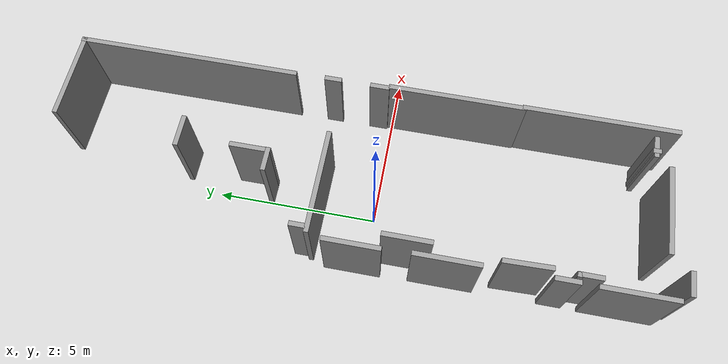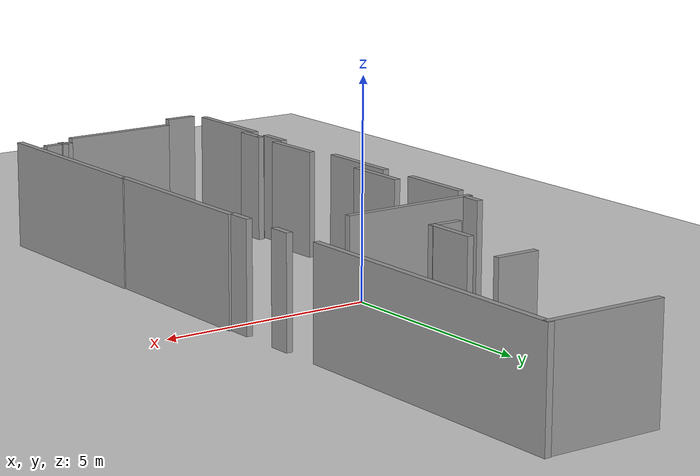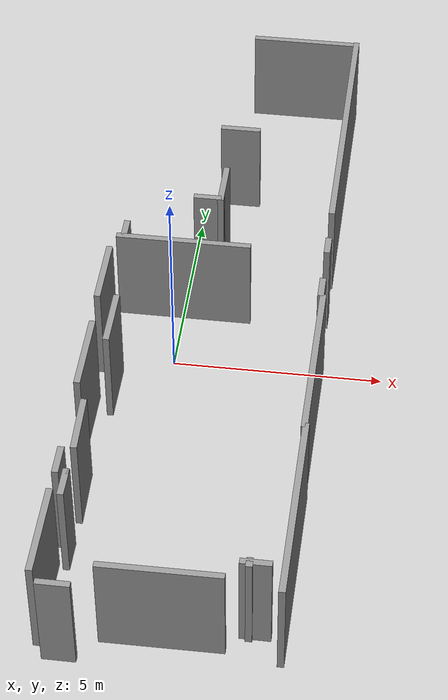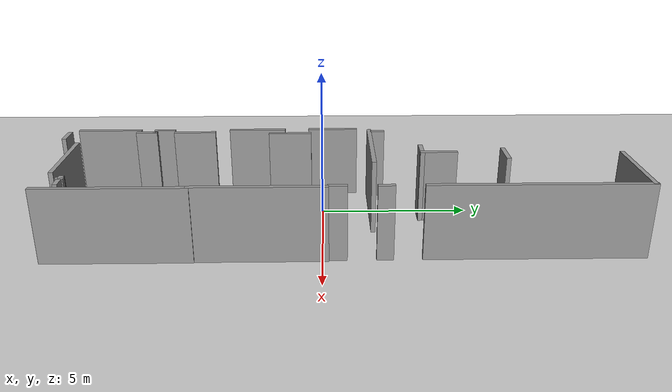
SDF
<sdf version="1.7">
 <world name="default">
  <model name="ground_plane">
   <static>1</static>
   <link name="link">
    <collision name="collision">
     <geometry><plane><normal>0 0 1</normal><size>100 100</size></plane></geometry>
     <surface>
      <contact><collide_bitmask>65535</collide_bitmask></contact>
      <friction><ode><mu>100</mu><mu2>50</mu2></ode></friction>
     </surface>
    </collision>
    <visual name="visual">
     <cast_shadows>0</cast_shadows>
     <geometry><plane><normal>0 0 1</normal><size>100 100</size></plane></geometry>
     <material>
      <script><uri>file://media/materials/scripts/gazebo.material</uri><name>Gazebo/Grey</name></script>
     </material>
    </visual>
   </link>
  </model>
  <model name="Bremen">
   <link name="Wall_12">
    <pose>2.00721 -8.46405 0 0 -0 3.14159</pose>
    <visual name="Wall_12_Visual">
     <pose>0 0 1.25 0 -0 0</pose>
     <geometry><box><size>0.690824 0.15 2.5</size></box></geometry>
     <material>
      <script><uri>file://media/materials/scripts/gazebo.material</uri><name>Gazebo/Grey</name></script>
      <ambient>1 1 1 1</ambient>
      <shader type="pixel"/>
     </material>
     <meta><layer>0</layer></meta>
    </visual>
    <collision name="Wall_12_Collision">
     <pose>0 0 1.25 0 -0 0</pose>
     <geometry><box><size>0.690824 0.15 2.5</size></box></geometry>
     <surface>
      <friction>
       <ode><mu>1</mu><mu2>1</mu2><fdir1>0 0 0</fdir1><slip1>0</slip1><slip2>0</slip2></ode>
       <torsional>
        <coefficient>1</coefficient>
        <patch_radius>0</patch_radius>
        <surface_radius>0</surface_radius>
        <use_patch_radius>1</use_patch_radius>
        <ode><slip>0</slip></ode>
       </torsional>
      </friction>
      <bounce><restitution_coefficient>0</restitution_coefficient><threshold>1e+06</threshold></bounce>
      <contact>
       <collide_without_contact>0</collide_without_contact>
       <collide_without_contact_bitmask>1</collide_without_contact_bitmask>
       <collide_bitmask>1</collide_bitmask>
       <ode>
        <soft_cfm>0</soft_cfm>
        <soft_erp>0.2</soft_erp>
        <kp>1e+13</kp>
        <kd>1</kd>
        <max_vel>0.01</max_vel>
        <min_depth>0</min_depth>
       </ode>
       <bullet>
        <split_impulse>1</split_impulse>
        <split_impulse_penetration_threshold>-0.01</split_impulse_penetration_threshold>
        <soft_cfm>0</soft_cfm>
        <soft_erp>0.2</soft_erp>
        <kp>1e+13</kp>
        <kd>1</kd>
       </bullet>
      </contact>
     </surface>
    </collision>
   </link>
   <link name="Wall_17">
    <pose>1.87355 -8.47751 0 0 0 -1.5708</pose>
    <visual name="Wall_17_Visual">
     <pose>0 0 1.25 0 -0 0</pose>
     <geometry><box><size>0.25 0.15 2.5</size></box></geometry>
     <material>
      <script><uri>file://media/materials/scripts/gazebo.material</uri><name>Gazebo/Grey</name></script>
      <ambient>1 1 1 1</ambient>
      <shader type="pixel"/>
     </material>
     <meta><layer>0</layer></meta>
    </visual>
    <collision name="Wall_17_Collision">
     <pose>0 0 1.25 0 -0 0</pose>
     <geometry><box><size>0.25 0.15 2.5</size></box></geometry>
     <surface>
      <friction>
       <ode><mu>1</mu><mu2>1</mu2><fdir1>0 0 0</fdir1><slip1>0</slip1><slip2>0</slip2></ode>
       <torsional>
        <coefficient>1</coefficient>
        <patch_radius>0</patch_radius>
        <surface_radius>0</surface_radius>
        <use_patch_radius>1</use_patch_radius>
        <ode><slip>0</slip></ode>
       </torsional>
      </friction>
      <bounce><restitution_coefficient>0</restitution_coefficient><threshold>1e+06</threshold></bounce>
      <contact>
       <collide_without_contact>0</collide_without_contact>
       <collide_without_contact_bitmask>1</collide_without_contact_bitmask>
       <collide_bitmask>1</collide_bitmask>
       <ode>
        <soft_cfm>0</soft_cfm>
        <soft_erp>0.2</soft_erp>
        <kp>1e+13</kp>
        <kd>1</kd>
        <max_vel>0.01</max_vel>
        <min_depth>0</min_depth>
       </ode>
       <bullet>
        <split_impulse>1</split_impulse>
        <split_impulse_penetration_threshold>-0.01</split_impulse_penetration_threshold>
        <soft_cfm>0</soft_cfm>
        <soft_erp>0.2</soft_erp>
        <kp>1e+13</kp>
        <kd>1</kd>
       </bullet>
      </contact>
     </surface>
    </collision>
   </link>
   <link name="Wall_19">
    <pose>0.062871 -8.91809 0 0 0 -3.13387</pose>
    <visual name="Wall_19_Visual">
     <pose>0 0 1.25 0 -0 0</pose>
     <geometry><box><size>2.72522 0.15 2.5</size></box></geometry>
     <material>
      <script><uri>file://media/materials/scripts/gazebo.material</uri><name>Gazebo/Grey</name></script>
      <ambient>1 1 1 1</ambient>
      <shader type="pixel"/>
     </material>
     <meta><layer>0</layer></meta>
    </visual>
    <collision name="Wall_19_Collision">
     <pose>0 0 1.25 0 -0 0</pose>
     <geometry><box><size>2.72522 0.15 2.5</size></box></geometry>
     <surface>
      <friction>
       <ode><mu>1</mu><mu2>1</mu2><fdir1>0 0 0</fdir1><slip1>0</slip1><slip2>0</slip2></ode>
       <torsional>
        <coefficient>1</coefficient>
        <patch_radius>0</patch_radius>
        <surface_radius>0</surface_radius>
        <use_patch_radius>1</use_patch_radius>
        <ode><slip>0</slip></ode>
       </torsional>
      </friction>
      <bounce><restitution_coefficient>0</restitution_coefficient><threshold>1e+06</threshold></bounce>
      <contact>
       <collide_without_contact>0</collide_without_contact>
       <collide_without_contact_bitmask>1</collide_without_contact_bitmask>
       <collide_bitmask>1</collide_bitmask>
       <ode>
        <soft_cfm>0</soft_cfm>
        <soft_erp>0.2</soft_erp>
        <kp>1e+13</kp>
        <kd>1</kd>
        <max_vel>0.01</max_vel>
        <min_depth>0</min_depth>
       </ode>
       <bullet>
        <split_impulse>1</split_impulse>
        <split_impulse_penetration_threshold>-0.01</split_impulse_penetration_threshold>
        <soft_cfm>0</soft_cfm>
        <soft_erp>0.2</soft_erp>
        <kp>1e+13</kp>
        <kd>1</kd>
       </bullet>
      </contact>
     </surface>
    </collision>
   </link>
   <link name="Wall_22">
    <pose>2.62503 -6.80715 0 0 -0 1.5708</pose>
    <visual name="Wall_22_Visual">
     <pose>0 0 1.25 0 -0 0</pose>
     <geometry><box><size>4.75 0.15 2.5</size></box></geometry>
     <material>
      <script><uri>file://media/materials/scripts/gazebo.material</uri><name>Gazebo/Grey</name></script>
      <ambient>1 1 1 1</ambient>
      <shader type="pixel"/>
     </material>
     <meta><layer>0</layer></meta>
    </visual>
    <collision name="Wall_22_Collision">
     <pose>0 0 1.25 0 -0 0</pose>
     <geometry><box><size>4.75 0.15 2.5</size></box></geometry>
     <surface>
      <friction>
       <ode><mu>1</mu><mu2>1</mu2><fdir1>0 0 0</fdir1><slip1>0</slip1><slip2>0</slip2></ode>
       <torsional>
        <coefficient>1</coefficient>
        <patch_radius>0</patch_radius>
        <surface_radius>0</surface_radius>
        <use_patch_radius>1</use_patch_radius>
        <ode><slip>0</slip></ode>
       </torsional>
      </friction>
      <bounce><restitution_coefficient>0</restitution_coefficient><threshold>1e+06</threshold></bounce>
      <contact>
       <collide_without_contact>0</collide_without_contact>
       <collide_without_contact_bitmask>1</collide_without_contact_bitmask>
       <collide_bitmask>1</collide_bitmask>
       <ode>
        <soft_cfm>0</soft_cfm>
        <soft_erp>0.2</soft_erp>
        <kp>1e+13</kp>
        <kd>1</kd>
        <max_vel>0.01</max_vel>
        <min_depth>0</min_depth>
       </ode>
       <bullet>
        <split_impulse>1</split_impulse>
        <split_impulse_penetration_threshold>-0.01</split_impulse_penetration_threshold>
        <soft_cfm>0</soft_cfm>
        <soft_erp>0.2</soft_erp>
        <kp>1e+13</kp>
        <kd>1</kd>
       </bullet>
      </contact>
     </surface>
    </collision>
   </link>
   <link name="Wall_24">
    <pose>2.59417 -2.42444 0 0 0 -1.5708</pose>
    <visual name="Wall_24_Visual">
     <pose>0 0 1.25 0 -0 0</pose>
     <geometry><box><size>4.25 0.15 2.5</size></box></geometry>
     <material>
      <script><uri>file://media/materials/scripts/gazebo.material</uri><name>Gazebo/Grey</name></script>
      <ambient>1 1 1 1</ambient>
      <shader type="pixel"/>
     </material>
     <meta><layer>0</layer></meta>
    </visual>
    <collision name="Wall_24_Collision">
     <pose>0 0 1.25 0 -0 0</pose>
     <geometry><box><size>4.25 0.15 2.5</size></box></geometry>
     <surface>
      <friction>
       <ode><mu>1</mu><mu2>1</mu2><fdir1>0 0 0</fdir1><slip1>0</slip1><slip2>0</slip2></ode>
       <torsional>
        <coefficient>1</coefficient>
        <patch_radius>0</patch_radius>
        <surface_radius>0</surface_radius>
        <use_patch_radius>1</use_patch_radius>
        <ode><slip>0</slip></ode>
       </torsional>
      </friction>
      <bounce><restitution_coefficient>0</restitution_coefficient><threshold>1e+06</threshold></bounce>
      <contact>
       <collide_without_contact>0</collide_without_contact>
       <collide_without_contact_bitmask>1</collide_without_contact_bitmask>
       <collide_bitmask>1</collide_bitmask>
       <ode>
        <soft_cfm>0</soft_cfm>
        <soft_erp>0.2</soft_erp>
        <kp>1e+13</kp>
        <kd>1</kd>
        <max_vel>0.01</max_vel>
        <min_depth>0</min_depth>
       </ode>
       <bullet>
        <split_impulse>1</split_impulse>
        <split_impulse_penetration_threshold>-0.01</split_impulse_penetration_threshold>
        <soft_cfm>0</soft_cfm>
        <soft_erp>0.2</soft_erp>
        <kp>1e+13</kp>
        <kd>1</kd>
       </bullet>
      </contact>
     </surface>
    </collision>
   </link>
   <link name="Wall_28">
    <pose>2.53799 -0.034106 0 0 -0 1.5708</pose>
    <visual name="Wall_28_Visual">
     <pose>0 0 1.25 0 -0 0</pose>
     <geometry><box><size>0.605036 0.15 2.5</size></box></geometry>
     <material>
      <script><uri>file://media/materials/scripts/gazebo.material</uri><name>Gazebo/Grey</name></script>
      <ambient>1 1 1 1</ambient>
      <shader type="pixel"/>
     </material>
     <meta><layer>0</layer></meta>
    </visual>
    <collision name="Wall_28_Collision">
     <pose>0 0 1.25 0 -0 0</pose>
     <geometry><box><size>0.605036 0.15 2.5</size></box></geometry>
     <surface>
      <friction>
       <ode><mu>1</mu><mu2>1</mu2><fdir1>0 0 0</fdir1><slip1>0</slip1><slip2>0</slip2></ode>
       <torsional>
        <coefficient>1</coefficient>
        <patch_radius>0</patch_radius>
        <surface_radius>0</surface_radius>
        <use_patch_radius>1</use_patch_radius>
        <ode><slip>0</slip></ode>
       </torsional>
      </friction>
      <bounce><restitution_coefficient>0</restitution_coefficient><threshold>1e+06</threshold></bounce>
      <contact>
       <collide_without_contact>0</collide_without_contact>
       <collide_without_contact_bitmask>1</collide_without_contact_bitmask>
       <collide_bitmask>1</collide_bitmask>
       <ode>
        <soft_cfm>0</soft_cfm>
        <soft_erp>0.2</soft_erp>
        <kp>1e+13</kp>
        <kd>1</kd>
        <max_vel>0.01</max_vel>
        <min_depth>0</min_depth>
       </ode>
       <bullet>
        <split_impulse>1</split_impulse>
        <split_impulse_penetration_threshold>-0.01</split_impulse_penetration_threshold>
        <soft_cfm>0</soft_cfm>
        <soft_erp>0.2</soft_erp>
        <kp>1e+13</kp>
        <kd>1</kd>
       </bullet>
      </contact>
     </surface>
    </collision>
   </link>
   <link name="Wall_31">
    <pose>2.53803 1.43445 0 0 -0 1.5708</pose>
    <visual name="Wall_31_Visual">
     <pose>0 0 1.25 0 -0 0</pose>
     <geometry><box><size>0.531772 0.15 2.5</size></box></geometry>
     <material>
      <script><uri>file://media/materials/scripts/gazebo.material</uri><name>Gazebo/Grey</name></script>
      <ambient>1 1 1 1</ambient>
      <shader type="pixel"/>
     </material>
     <meta><layer>0</layer></meta>
    </visual>
    <collision name="Wall_31_Collision">
     <pose>0 0 1.25 0 -0 0</pose>
     <geometry><box><size>0.531772 0.15 2.5</size></box></geometry>
     <surface>
      <friction>
       <ode><mu>1</mu><mu2>1</mu2><fdir1>0 0 0</fdir1><slip1>0</slip1><slip2>0</slip2></ode>
       <torsional>
        <coefficient>1</coefficient>
        <patch_radius>0</patch_radius>
        <surface_radius>0</surface_radius>
        <use_patch_radius>1</use_patch_radius>
        <ode><slip>0</slip></ode>
       </torsional>
      </friction>
      <bounce><restitution_coefficient>0</restitution_coefficient><threshold>1e+06</threshold></bounce>
      <contact>
       <collide_without_contact>0</collide_without_contact>
       <collide_without_contact_bitmask>1</collide_without_contact_bitmask>
       <collide_bitmask>1</collide_bitmask>
       <ode>
        <soft_cfm>0</soft_cfm>
        <soft_erp>0.2</soft_erp>
        <kp>1e+13</kp>
        <kd>1</kd>
        <max_vel>0.01</max_vel>
        <min_depth>0</min_depth>
       </ode>
       <bullet>
        <split_impulse>1</split_impulse>
        <split_impulse_penetration_threshold>-0.01</split_impulse_penetration_threshold>
        <soft_cfm>0</soft_cfm>
        <soft_erp>0.2</soft_erp>
        <kp>1e+13</kp>
        <kd>1</kd>
       </bullet>
      </contact>
     </surface>
    </collision>
   </link>
   <link name="Wall_34">
    <pose>2.52369 6.09553 0 0 -0 1.5708</pose>
    <visual name="Wall_34_Visual">
     <pose>0 0 1.25 0 -0 0</pose>
     <geometry><box><size>7 0.15 2.5</size></box></geometry>
     <material>
      <script><uri>file://media/materials/scripts/gazebo.material</uri><name>Gazebo/Grey</name></script>
      <ambient>1 1 1 1</ambient>
      <shader type="pixel"/>
     </material>
     <meta><layer>0</layer></meta>
    </visual>
    <collision name="Wall_34_Collision">
     <pose>0 0 1.25 0 -0 0</pose>
     <geometry><box><size>7 0.15 2.5</size></box></geometry>
     <surface>
      <friction>
       <ode><mu>1</mu><mu2>1</mu2><fdir1>0 0 0</fdir1><slip1>0</slip1><slip2>0</slip2></ode>
       <torsional>
        <coefficient>1</coefficient>
        <patch_radius>0</patch_radius>
        <surface_radius>0</surface_radius>
        <use_patch_radius>1</use_patch_radius>
        <ode><slip>0</slip></ode>
       </torsional>
      </friction>
      <bounce><restitution_coefficient>0</restitution_coefficient><threshold>1e+06</threshold></bounce>
      <contact>
       <collide_without_contact>0</collide_without_contact>
       <collide_without_contact_bitmask>1</collide_without_contact_bitmask>
       <collide_bitmask>1</collide_bitmask>
       <ode>
        <soft_cfm>0</soft_cfm>
        <soft_erp>0.2</soft_erp>
        <kp>1e+13</kp>
        <kd>1</kd>
        <max_vel>0.01</max_vel>
        <min_depth>0</min_depth>
       </ode>
       <bullet>
        <split_impulse>1</split_impulse>
        <split_impulse_penetration_threshold>-0.01</split_impulse_penetration_threshold>
        <soft_cfm>0</soft_cfm>
        <soft_erp>0.2</soft_erp>
        <kp>1e+13</kp>
        <kd>1</kd>
       </bullet>
      </contact>
     </surface>
    </collision>
   </link>
   <link name="Wall_37">
    <pose>1.19275 9.49861 0 0 -0 0</pose>
    <visual name="Wall_37_Visual">
     <pose>0 0 1.25 0 -0 0</pose>
     <geometry><box><size>2.75 0.15 2.5</size></box></geometry>
     <material>
      <script><uri>file://media/materials/scripts/gazebo.material</uri><name>Gazebo/Grey</name></script>
      <ambient>1 1 1 1</ambient>
      <shader type="pixel"/>
     </material>
     <meta><layer>0</layer></meta>
    </visual>
    <collision name="Wall_37_Collision">
     <pose>0 0 1.25 0 -0 0</pose>
     <geometry><box><size>2.75 0.15 2.5</size></box></geometry>
     <surface>
      <friction>
       <ode><mu>1</mu><mu2>1</mu2><fdir1>0 0 0</fdir1><slip1>0</slip1><slip2>0</slip2></ode>
       <torsional>
        <coefficient>1</coefficient>
        <patch_radius>0</patch_radius>
        <surface_radius>0</surface_radius>
        <use_patch_radius>1</use_patch_radius>
        <ode><slip>0</slip></ode>
       </torsional>
      </friction>
      <bounce><restitution_coefficient>0</restitution_coefficient><threshold>1e+06</threshold></bounce>
      <contact>
       <collide_without_contact>0</collide_without_contact>
       <collide_without_contact_bitmask>1</collide_without_contact_bitmask>
       <collide_bitmask>1</collide_bitmask>
       <ode>
        <soft_cfm>0</soft_cfm>
        <soft_erp>0.2</soft_erp>
        <kp>1e+13</kp>
        <kd>1</kd>
        <max_vel>0.01</max_vel>
        <min_depth>0</min_depth>
       </ode>
       <bullet>
        <split_impulse>1</split_impulse>
        <split_impulse_penetration_threshold>-0.01</split_impulse_penetration_threshold>
        <soft_cfm>0</soft_cfm>
        <soft_erp>0.2</soft_erp>
        <kp>1e+13</kp>
        <kd>1</kd>
       </bullet>
      </contact>
     </surface>
    </collision>
   </link>
   <link name="Wall_40">
    <pose>-0.912236 1.17525 0 0 -0 3.14159</pose>
    <visual name="Wall_40_Visual">
     <pose>0 0 1.25 0 -0 0</pose>
     <geometry><box><size>3.25 0.15 2.5</size></box></geometry>
     <material>
      <script><uri>file://media/materials/scripts/gazebo.material</uri><name>Gazebo/Grey</name></script>
      <ambient>1 1 1 1</ambient>
      <shader type="pixel"/>
     </material>
     <meta><layer>0</layer></meta>
    </visual>
    <collision name="Wall_40_Collision">
     <pose>0 0 1.25 0 -0 0</pose>
     <geometry><box><size>3.25 0.15 2.5</size></box></geometry>
     <surface>
      <friction>
       <ode><mu>1</mu><mu2>1</mu2><fdir1>0 0 0</fdir1><slip1>0</slip1><slip2>0</slip2></ode>
       <torsional>
        <coefficient>1</coefficient>
        <patch_radius>0</patch_radius>
        <surface_radius>0</surface_radius>
        <use_patch_radius>1</use_patch_radius>
        <ode><slip>0</slip></ode>
       </torsional>
      </friction>
      <bounce><restitution_coefficient>0</restitution_coefficient><threshold>1e+06</threshold></bounce>
      <contact>
       <collide_without_contact>0</collide_without_contact>
       <collide_without_contact_bitmask>1</collide_without_contact_bitmask>
       <collide_bitmask>1</collide_bitmask>
       <ode>
        <soft_cfm>0</soft_cfm>
        <soft_erp>0.2</soft_erp>
        <kp>1e+13</kp>
        <kd>1</kd>
        <max_vel>0.01</max_vel>
        <min_depth>0</min_depth>
       </ode>
       <bullet>
        <split_impulse>1</split_impulse>
        <split_impulse_penetration_threshold>-0.01</split_impulse_penetration_threshold>
        <soft_cfm>0</soft_cfm>
        <soft_erp>0.2</soft_erp>
        <kp>1e+13</kp>
        <kd>1</kd>
       </bullet>
      </contact>
     </surface>
    </collision>
   </link>
   <link name="Wall_42">
    <pose>-2.35817 1.46547 0 0 -0 1.5708</pose>
    <visual name="Wall_42_Visual">
     <pose>0 0 1.25 0 -0 0</pose>
     <geometry><box><size>0.5 0.15 2.5</size></box></geometry>
     <material>
      <script><uri>file://media/materials/scripts/gazebo.material</uri><name>Gazebo/Grey</name></script>
      <ambient>1 1 1 1</ambient>
      <shader type="pixel"/>
     </material>
     <meta><layer>0</layer></meta>
    </visual>
    <collision name="Wall_42_Collision">
     <pose>0 0 1.25 0 -0 0</pose>
     <geometry><box><size>0.5 0.15 2.5</size></box></geometry>
     <surface>
      <friction>
       <ode><mu>1</mu><mu2>1</mu2><fdir1>0 0 0</fdir1><slip1>0</slip1><slip2>0</slip2></ode>
       <torsional>
        <coefficient>1</coefficient>
        <patch_radius>0</patch_radius>
        <surface_radius>0</surface_radius>
        <use_patch_radius>1</use_patch_radius>
        <ode><slip>0</slip></ode>
       </torsional>
      </friction>
      <bounce><restitution_coefficient>0</restitution_coefficient><threshold>1e+06</threshold></bounce>
      <contact>
       <collide_without_contact>0</collide_without_contact>
       <collide_without_contact_bitmask>1</collide_without_contact_bitmask>
       <collide_bitmask>1</collide_bitmask>
       <ode>
        <soft_cfm>0</soft_cfm>
        <soft_erp>0.2</soft_erp>
        <kp>1e+13</kp>
        <kd>1</kd>
        <max_vel>0.01</max_vel>
        <min_depth>0</min_depth>
       </ode>
       <bullet>
        <split_impulse>1</split_impulse>
        <split_impulse_penetration_threshold>-0.01</split_impulse_penetration_threshold>
        <soft_cfm>0</soft_cfm>
        <soft_erp>0.2</soft_erp>
        <kp>1e+13</kp>
        <kd>1</kd>
       </bullet>
      </contact>
     </surface>
    </collision>
   </link>
   <link name="Wall_44">
    <pose>-2.62503 -0.134545 0 0 0 -1.5708</pose>
    <visual name="Wall_44_Visual">
     <pose>0 0 1.25 0 -0 0</pose>
     <geometry><box><size>1.75 0.15 2.5</size></box></geometry>
     <material>
      <script><uri>file://media/materials/scripts/gazebo.material</uri><name>Gazebo/Grey</name></script>
      <ambient>1 1 1 1</ambient>
      <shader type="pixel"/>
     </material>
     <meta><layer>0</layer></meta>
    </visual>
    <collision name="Wall_44_Collision">
     <pose>0 0 1.25 0 -0 0</pose>
     <geometry><box><size>1.75 0.15 2.5</size></box></geometry>
     <surface>
      <friction>
       <ode><mu>1</mu><mu2>1</mu2><fdir1>0 0 0</fdir1><slip1>0</slip1><slip2>0</slip2></ode>
       <torsional>
        <coefficient>1</coefficient>
        <patch_radius>0</patch_radius>
        <surface_radius>0</surface_radius>
        <use_patch_radius>1</use_patch_radius>
        <ode><slip>0</slip></ode>
       </torsional>
      </friction>
      <bounce><restitution_coefficient>0</restitution_coefficient><threshold>1e+06</threshold></bounce>
      <contact>
       <collide_without_contact>0</collide_without_contact>
       <collide_without_contact_bitmask>1</collide_without_contact_bitmask>
       <collide_bitmask>1</collide_bitmask>
       <ode>
        <soft_cfm>0</soft_cfm>
        <soft_erp>0.2</soft_erp>
        <kp>1e+13</kp>
        <kd>1</kd>
        <max_vel>0.01</max_vel>
        <min_depth>0</min_depth>
       </ode>
       <bullet>
        <split_impulse>1</split_impulse>
        <split_impulse_penetration_threshold>-0.01</split_impulse_penetration_threshold>
        <soft_cfm>0</soft_cfm>
        <soft_erp>0.2</soft_erp>
        <kp>1e+13</kp>
        <kd>1</kd>
       </bullet>
      </contact>
     </surface>
    </collision>
   </link>
   <link name="Wall_47">
    <pose>-2.17683 -1.65592 0 0 0 -1.5708</pose>
    <visual name="Wall_47_Visual">
     <pose>0 0 1.25 0 -0 0</pose>
     <geometry><box><size>1.5 0.15 2.5</size></box></geometry>
     <material>
      <script><uri>file://media/materials/scripts/gazebo.material</uri><name>Gazebo/Grey</name></script>
      <ambient>1 1 1 1</ambient>
      <shader type="pixel"/>
     </material>
     <meta><layer>0</layer></meta>
    </visual>
    <collision name="Wall_47_Collision">
     <pose>0 0 1.25 0 -0 0</pose>
     <geometry><box><size>1.5 0.15 2.5</size></box></geometry>
     <surface>
      <friction>
       <ode><mu>1</mu><mu2>1</mu2><fdir1>0 0 0</fdir1><slip1>0</slip1><slip2>0</slip2></ode>
       <torsional>
        <coefficient>1</coefficient>
        <patch_radius>0</patch_radius>
        <surface_radius>0</surface_radius>
        <use_patch_radius>1</use_patch_radius>
        <ode><slip>0</slip></ode>
       </torsional>
      </friction>
      <bounce><restitution_coefficient>0</restitution_coefficient><threshold>1e+06</threshold></bounce>
      <contact>
       <collide_without_contact>0</collide_without_contact>
       <collide_without_contact_bitmask>1</collide_without_contact_bitmask>
       <collide_bitmask>1</collide_bitmask>
       <ode>
        <soft_cfm>0</soft_cfm>
        <soft_erp>0.2</soft_erp>
        <kp>1e+13</kp>
        <kd>1</kd>
        <max_vel>0.01</max_vel>
        <min_depth>0</min_depth>
       </ode>
       <bullet>
        <split_impulse>1</split_impulse>
        <split_impulse_penetration_threshold>-0.01</split_impulse_penetration_threshold>
        <soft_cfm>0</soft_cfm>
        <soft_erp>0.2</soft_erp>
        <kp>1e+13</kp>
        <kd>1</kd>
       </bullet>
      </contact>
     </surface>
    </collision>
   </link>
   <link name="Wall_52">
    <pose>-2.58227 -2.84419 0 0 -0 1.5708</pose>
    <visual name="Wall_52_Visual">
     <pose>0 0 1.25 0 -0 0</pose>
     <geometry><box><size>2 0.15 2.5</size></box></geometry>
     <material>
      <script><uri>file://media/materials/scripts/gazebo.material</uri><name>Gazebo/Grey</name></script>
      <ambient>1 1 1 1</ambient>
      <shader type="pixel"/>
     </material>
     <meta><layer>0</layer></meta>
    </visual>
    <collision name="Wall_52_Collision">
     <pose>0 0 1.25 0 -0 0</pose>
     <geometry><box><size>2 0.15 2.5</size></box></geometry>
     <surface>
      <friction>
       <ode><mu>1</mu><mu2>1</mu2><fdir1>0 0 0</fdir1><slip1>0</slip1><slip2>0</slip2></ode>
       <torsional>
        <coefficient>1</coefficient>
        <patch_radius>0</patch_radius>
        <surface_radius>0</surface_radius>
        <use_patch_radius>1</use_patch_radius>
        <ode><slip>0</slip></ode>
       </torsional>
      </friction>
      <bounce><restitution_coefficient>0</restitution_coefficient><threshold>1e+06</threshold></bounce>
      <contact>
       <collide_without_contact>0</collide_without_contact>
       <collide_without_contact_bitmask>1</collide_without_contact_bitmask>
       <collide_bitmask>1</collide_bitmask>
       <ode>
        <soft_cfm>0</soft_cfm>
        <soft_erp>0.2</soft_erp>
        <kp>1e+13</kp>
        <kd>1</kd>
        <max_vel>0.01</max_vel>
        <min_depth>0</min_depth>
       </ode>
       <bullet>
        <split_impulse>1</split_impulse>
        <split_impulse_penetration_threshold>-0.01</split_impulse_penetration_threshold>
        <soft_cfm>0</soft_cfm>
        <soft_erp>0.2</soft_erp>
        <kp>1e+13</kp>
        <kd>1</kd>
       </bullet>
      </contact>
     </surface>
    </collision>
   </link>
   <link name="Wall_54">
    <pose>-2.31455 -5.06059 0 0 0 -1.54512</pose>
    <visual name="Wall_54_Visual">
     <pose>0 0 1.25 0 -0 0</pose>
     <geometry><box><size>1.47091 0.15 2.5</size></box></geometry>
     <material>
      <script><uri>file://media/materials/scripts/gazebo.material</uri><name>Gazebo/Grey</name></script>
      <ambient>1 1 1 1</ambient>
      <shader type="pixel"/>
     </material>
     <meta><layer>0</layer></meta>
    </visual>
    <collision name="Wall_54_Collision">
     <pose>0 0 1.25 0 -0 0</pose>
     <geometry><box><size>1.47091 0.15 2.5</size></box></geometry>
     <surface>
      <friction>
       <ode><mu>1</mu><mu2>1</mu2><fdir1>0 0 0</fdir1><slip1>0</slip1><slip2>0</slip2></ode>
       <torsional>
        <coefficient>1</coefficient>
        <patch_radius>0</patch_radius>
        <surface_radius>0</surface_radius>
        <use_patch_radius>1</use_patch_radius>
        <ode><slip>0</slip></ode>
       </torsional>
      </friction>
      <bounce><restitution_coefficient>0</restitution_coefficient><threshold>1e+06</threshold></bounce>
      <contact>
       <collide_without_contact>0</collide_without_contact>
       <collide_without_contact_bitmask>1</collide_without_contact_bitmask>
       <collide_bitmask>1</collide_bitmask>
       <ode>
        <soft_cfm>0</soft_cfm>
        <soft_erp>0.2</soft_erp>
        <kp>1e+13</kp>
        <kd>1</kd>
        <max_vel>0.01</max_vel>
        <min_depth>0</min_depth>
       </ode>
       <bullet>
        <split_impulse>1</split_impulse>
        <split_impulse_penetration_threshold>-0.01</split_impulse_penetration_threshold>
        <soft_cfm>0</soft_cfm>
        <soft_erp>0.2</soft_erp>
        <kp>1e+13</kp>
        <kd>1</kd>
       </bullet>
      </contact>
     </surface>
    </collision>
   </link>
   <link name="Wall_57">
    <pose>-2.56406 -6.17227 0 0 -0 1.5708</pose>
    <visual name="Wall_57_Visual">
     <pose>0 0 1.25 0 -0 0</pose>
     <geometry><box><size>0.75 0.15 2.5</size></box></geometry>
     <material>
      <script><uri>file://media/materials/scripts/gazebo.material</uri><name>Gazebo/Grey</name></script>
      <ambient>1 1 1 1</ambient>
      <shader type="pixel"/>
     </material>
     <meta><layer>0</layer></meta>
    </visual>
    <collision name="Wall_57_Collision">
     <pose>0 0 1.25 0 -0 0</pose>
     <geometry><box><size>0.75 0.15 2.5</size></box></geometry>
     <surface>
      <friction>
       <ode><mu>1</mu><mu2>1</mu2><fdir1>0 0 0</fdir1><slip1>0</slip1><slip2>0</slip2></ode>
       <torsional>
        <coefficient>1</coefficient>
        <patch_radius>0</patch_radius>
        <surface_radius>0</surface_radius>
        <use_patch_radius>1</use_patch_radius>
        <ode><slip>0</slip></ode>
       </torsional>
      </friction>
      <bounce><restitution_coefficient>0</restitution_coefficient><threshold>1e+06</threshold></bounce>
      <contact>
       <collide_without_contact>0</collide_without_contact>
       <collide_without_contact_bitmask>1</collide_without_contact_bitmask>
       <collide_bitmask>1</collide_bitmask>
       <ode>
        <soft_cfm>0</soft_cfm>
        <soft_erp>0.2</soft_erp>
        <kp>1e+13</kp>
        <kd>1</kd>
        <max_vel>0.01</max_vel>
        <min_depth>0</min_depth>
       </ode>
       <bullet>
        <split_impulse>1</split_impulse>
        <split_impulse_penetration_threshold>-0.01</split_impulse_penetration_threshold>
        <soft_cfm>0</soft_cfm>
        <soft_erp>0.2</soft_erp>
        <kp>1e+13</kp>
        <kd>1</kd>
       </bullet>
      </contact>
     </surface>
    </collision>
   </link>
   <link name="Wall_60">
    <pose>-2.34359 -6.48281 0 0 -0 0</pose>
    <visual name="Wall_60_Visual">
     <pose>0 0 1.25 0 -0 0</pose>
     <geometry><box><size>0.15 0.15 2.5</size></box></geometry>
     <material>
      <script><uri>file://media/materials/scripts/gazebo.material</uri><name>Gazebo/Grey</name></script>
      <ambient>1 1 1 1</ambient>
      <shader type="pixel"/>
     </material>
     <meta><layer>0</layer></meta>
    </visual>
    <collision name="Wall_60_Collision">
     <pose>0 0 1.25 0 -0 0</pose>
     <geometry><box><size>0.15 0.15 2.5</size></box></geometry>
     <surface>
      <friction>
       <ode><mu>1</mu><mu2>1</mu2><fdir1>0 0 0</fdir1><slip1>0</slip1><slip2>0</slip2></ode>
       <torsional>
        <coefficient>1</coefficient>
        <patch_radius>0</patch_radius>
        <surface_radius>0</surface_radius>
        <use_patch_radius>1</use_patch_radius>
        <ode><slip>0</slip></ode>
       </torsional>
      </friction>
      <bounce><restitution_coefficient>0</restitution_coefficient><threshold>1e+06</threshold></bounce>
      <contact>
       <collide_without_contact>0</collide_without_contact>
       <collide_without_contact_bitmask>1</collide_without_contact_bitmask>
       <collide_bitmask>1</collide_bitmask>
       <ode>
        <soft_cfm>0</soft_cfm>
        <soft_erp>0.2</soft_erp>
        <kp>1e+13</kp>
        <kd>1</kd>
        <max_vel>0.01</max_vel>
        <min_depth>0</min_depth>
       </ode>
       <bullet>
        <split_impulse>1</split_impulse>
        <split_impulse_penetration_threshold>-0.01</split_impulse_penetration_threshold>
        <soft_cfm>0</soft_cfm>
        <soft_erp>0.2</soft_erp>
        <kp>1e+13</kp>
        <kd>1</kd>
       </bullet>
      </contact>
     </surface>
    </collision>
   </link>
   <link name="Wall_62">
    <pose>-2.33294 -6.77988 0 0 -0 1.56772</pose>
    <visual name="Wall_62_Visual">
     <pose>0 0 1.25 0 -0 0</pose>
     <geometry><box><size>0.751334 0.15 2.5</size></box></geometry>
     <material>
      <script><uri>file://media/materials/scripts/gazebo.material</uri><name>Gazebo/Grey</name></script>
      <ambient>1 1 1 1</ambient>
      <shader type="pixel"/>
     </material>
     <meta><layer>0</layer></meta>
    </visual>
    <collision name="Wall_62_Collision">
     <pose>0 0 1.25 0 -0 0</pose>
     <geometry><box><size>0.751334 0.15 2.5</size></box></geometry>
     <surface>
      <friction>
       <ode><mu>1</mu><mu2>1</mu2><fdir1>0 0 0</fdir1><slip1>0</slip1><slip2>0</slip2></ode>
       <torsional>
        <coefficient>1</coefficient>
        <patch_radius>0</patch_radius>
        <surface_radius>0</surface_radius>
        <use_patch_radius>1</use_patch_radius>
        <ode><slip>0</slip></ode>
       </torsional>
      </friction>
      <bounce><restitution_coefficient>0</restitution_coefficient><threshold>1e+06</threshold></bounce>
      <contact>
       <collide_without_contact>0</collide_without_contact>
       <collide_without_contact_bitmask>1</collide_without_contact_bitmask>
       <collide_bitmask>1</collide_bitmask>
       <ode>
        <soft_cfm>0</soft_cfm>
        <soft_erp>0.2</soft_erp>
        <kp>1e+13</kp>
        <kd>1</kd>
        <max_vel>0.01</max_vel>
        <min_depth>0</min_depth>
       </ode>
       <bullet>
        <split_impulse>1</split_impulse>
        <split_impulse_penetration_threshold>-0.01</split_impulse_penetration_threshold>
        <soft_cfm>0</soft_cfm>
        <soft_erp>0.2</soft_erp>
        <kp>1e+13</kp>
        <kd>1</kd>
       </bullet>
      </contact>
     </surface>
    </collision>
   </link>
   <link name="Wall_65">
    <pose>-2.58366 -8.13911 0 0 0 -1.5708</pose>
    <visual name="Wall_65_Visual">
     <pose>0 0 1.25 0 -0 0</pose>
     <geometry><box><size>2.25 0.15 2.5</size></box></geometry>
     <material>
      <script><uri>file://media/materials/scripts/gazebo.material</uri><name>Gazebo/Grey</name></script>
      <ambient>1 1 1 1</ambient>
      <shader type="pixel"/>
     </material>
     <meta><layer>0</layer></meta>
    </visual>
    <collision name="Wall_65_Collision">
     <pose>0 0 1.25 0 -0 0</pose>
     <geometry><box><size>2.25 0.15 2.5</size></box></geometry>
     <surface>
      <friction>
       <ode><mu>1</mu><mu2>1</mu2><fdir1>0 0 0</fdir1><slip1>0</slip1><slip2>0</slip2></ode>
       <torsional>
        <coefficient>1</coefficient>
        <patch_radius>0</patch_radius>
        <surface_radius>0</surface_radius>
        <use_patch_radius>1</use_patch_radius>
        <ode><slip>0</slip></ode>
       </torsional>
      </friction>
      <bounce><restitution_coefficient>0</restitution_coefficient><threshold>1e+06</threshold></bounce>
      <contact>
       <collide_without_contact>0</collide_without_contact>
       <collide_without_contact_bitmask>1</collide_without_contact_bitmask>
       <collide_bitmask>1</collide_bitmask>
       <ode>
        <soft_cfm>0</soft_cfm>
        <soft_erp>0.2</soft_erp>
        <kp>1e+13</kp>
        <kd>1</kd>
        <max_vel>0.01</max_vel>
        <min_depth>0</min_depth>
       </ode>
       <bullet>
        <split_impulse>1</split_impulse>
        <split_impulse_penetration_threshold>-0.01</split_impulse_penetration_threshold>
        <soft_cfm>0</soft_cfm>
        <soft_erp>0.2</soft_erp>
        <kp>1e+13</kp>
        <kd>1</kd>
       </bullet>
      </contact>
     </surface>
    </collision>
   </link>
   <link name="Wall_67">
    <pose>-2.04311 -9.52053 0 0 -0 0</pose>
    <visual name="Wall_67_Visual">
     <pose>0 0 1.25 0 -0 0</pose>
     <geometry><box><size>0.75 0.15 2.5</size></box></geometry>
     <material>
      <script><uri>file://media/materials/scripts/gazebo.material</uri><name>Gazebo/Grey</name></script>
      <ambient>1 1 1 1</ambient>
      <shader type="pixel"/>
     </material>
     <meta><layer>0</layer></meta>
    </visual>
    <collision name="Wall_67_Collision">
     <pose>0 0 1.25 0 -0 0</pose>
     <geometry><box><size>0.75 0.15 2.5</size></box></geometry>
     <surface>
      <friction>
       <ode><mu>1</mu><mu2>1</mu2><fdir1>0 0 0</fdir1><slip1>0</slip1><slip2>0</slip2></ode>
       <torsional>
        <coefficient>1</coefficient>
        <patch_radius>0</patch_radius>
        <surface_radius>0</surface_radius>
        <use_patch_radius>1</use_patch_radius>
        <ode><slip>0</slip></ode>
       </torsional>
      </friction>
      <bounce><restitution_coefficient>0</restitution_coefficient><threshold>1e+06</threshold></bounce>
      <contact>
       <collide_without_contact>0</collide_without_contact>
       <collide_without_contact_bitmask>1</collide_without_contact_bitmask>
       <collide_bitmask>1</collide_bitmask>
       <ode>
        <soft_cfm>0</soft_cfm>
        <soft_erp>0.2</soft_erp>
        <kp>1e+13</kp>
        <kd>1</kd>
        <max_vel>0.01</max_vel>
        <min_depth>0</min_depth>
       </ode>
       <bullet>
        <split_impulse>1</split_impulse>
        <split_impulse_penetration_threshold>-0.01</split_impulse_penetration_threshold>
        <soft_cfm>0</soft_cfm>
        <soft_erp>0.2</soft_erp>
        <kp>1e+13</kp>
        <kd>1</kd>
       </bullet>
      </contact>
     </surface>
    </collision>
   </link>
   <link name="Wall_70">
    <pose>-0.519411 2.83709 0 0 -0 0</pose>
    <visual name="Wall_70_Visual">
     <pose>0 0 1.25 0 -0 0</pose>
     <geometry><box><size>0.75 0.15 2.5</size></box></geometry>
     <material>
      <script><uri>file://media/materials/scripts/gazebo.material</uri><name>Gazebo/Grey</name></script>
      <ambient>1 1 1 1</ambient>
      <shader type="pixel"/>
     </material>
     <meta><layer>0</layer></meta>
    </visual>
    <collision name="Wall_70_Collision">
     <pose>0 0 1.25 0 -0 0</pose>
     <geometry><box><size>0.75 0.15 2.5</size></box></geometry>
     <surface>
      <friction>
       <ode><mu>1</mu><mu2>1</mu2><fdir1>0 0 0</fdir1><slip1>0</slip1><slip2>0</slip2></ode>
       <torsional>
        <coefficient>1</coefficient>
        <patch_radius>0</patch_radius>
        <surface_radius>0</surface_radius>
        <use_patch_radius>1</use_patch_radius>
        <ode><slip>0</slip></ode>
       </torsional>
      </friction>
      <bounce><restitution_coefficient>0</restitution_coefficient><threshold>1e+06</threshold></bounce>
      <contact>
       <collide_without_contact>0</collide_without_contact>
       <collide_without_contact_bitmask>1</collide_without_contact_bitmask>
       <collide_bitmask>1</collide_bitmask>
       <ode>
        <soft_cfm>0</soft_cfm>
        <soft_erp>0.2</soft_erp>
        <kp>1e+13</kp>
        <kd>1</kd>
        <max_vel>0.01</max_vel>
        <min_depth>0</min_depth>
       </ode>
       <bullet>
        <split_impulse>1</split_impulse>
        <split_impulse_penetration_threshold>-0.01</split_impulse_penetration_threshold>
        <soft_cfm>0</soft_cfm>
        <soft_erp>0.2</soft_erp>
        <kp>1e+13</kp>
        <kd>1</kd>
       </bullet>
      </contact>
     </surface>
    </collision>
   </link>
   <link name="Wall_71">
    <pose>-0.229299 3.38708 0 0 -0 1.5708</pose>
    <visual name="Wall_71_Visual">
     <pose>0 0 1.25 0 -0 0</pose>
     <geometry><box><size>1.25 0.15 2.5</size></box></geometry>
     <material>
      <script><uri>file://media/materials/scripts/gazebo.material</uri><name>Gazebo/Grey</name></script>
      <ambient>1 1 1 1</ambient>
      <shader type="pixel"/>
     </material>
     <meta><layer>0</layer></meta>
    </visual>
    <collision name="Wall_71_Collision">
     <pose>0 0 1.25 0 -0 0</pose>
     <geometry><box><size>1.25 0.15 2.5</size></box></geometry>
     <surface>
      <friction>
       <ode><mu>1</mu><mu2>1</mu2><fdir1>0 0 0</fdir1><slip1>0</slip1><slip2>0</slip2></ode>
       <torsional>
        <coefficient>1</coefficient>
        <patch_radius>0</patch_radius>
        <surface_radius>0</surface_radius>
        <use_patch_radius>1</use_patch_radius>
        <ode><slip>0</slip></ode>
       </torsional>
      </friction>
      <bounce><restitution_coefficient>0</restitution_coefficient><threshold>1e+06</threshold></bounce>
      <contact>
       <collide_without_contact>0</collide_without_contact>
       <collide_without_contact_bitmask>1</collide_without_contact_bitmask>
       <collide_bitmask>1</collide_bitmask>
       <ode>
        <soft_cfm>0</soft_cfm>
        <soft_erp>0.2</soft_erp>
        <kp>1e+13</kp>
        <kd>1</kd>
        <max_vel>0.01</max_vel>
        <min_depth>0</min_depth>
       </ode>
       <bullet>
        <split_impulse>1</split_impulse>
        <split_impulse_penetration_threshold>-0.01</split_impulse_penetration_threshold>
        <soft_cfm>0</soft_cfm>
        <soft_erp>0.2</soft_erp>
        <kp>1e+13</kp>
        <kd>1</kd>
       </bullet>
      </contact>
     </surface>
    </collision>
   </link>
   <link name="Wall_73">
    <pose>-0.078426 5.58572 0 0 -0 3.14159</pose>
    <visual name="Wall_73_Visual">
     <pose>0 0 1.25 0 -0 0</pose>
     <geometry><box><size>1 0.15 2.5</size></box></geometry>
     <material>
      <script><uri>file://media/materials/scripts/gazebo.material</uri><name>Gazebo/Grey</name></script>
      <ambient>1 1 1 1</ambient>
      <shader type="pixel"/>
     </material>
     <meta><layer>0</layer></meta>
    </visual>
    <collision name="Wall_73_Collision">
     <pose>0 0 1.25 0 -0 0</pose>
     <geometry><box><size>1 0.15 2.5</size></box></geometry>
     <surface>
      <friction>
       <ode><mu>1</mu><mu2>1</mu2><fdir1>0 0 0</fdir1><slip1>0</slip1><slip2>0</slip2></ode>
       <torsional>
        <coefficient>1</coefficient>
        <patch_radius>0</patch_radius>
        <surface_radius>0</surface_radius>
        <use_patch_radius>1</use_patch_radius>
        <ode><slip>0</slip></ode>
       </torsional>
      </friction>
      <bounce><restitution_coefficient>0</restitution_coefficient><threshold>1e+06</threshold></bounce>
      <contact>
       <collide_without_contact>0</collide_without_contact>
       <collide_without_contact_bitmask>1</collide_without_contact_bitmask>
       <collide_bitmask>1</collide_bitmask>
       <ode>
        <soft_cfm>0</soft_cfm>
        <soft_erp>0.2</soft_erp>
        <kp>1e+13</kp>
        <kd>1</kd>
        <max_vel>0.01</max_vel>
        <min_depth>0</min_depth>
       </ode>
       <bullet>
        <split_impulse>1</split_impulse>
        <split_impulse_penetration_threshold>-0.01</split_impulse_penetration_threshold>
        <soft_cfm>0</soft_cfm>
        <soft_erp>0.2</soft_erp>
        <kp>1e+13</kp>
        <kd>1</kd>
       </bullet>
      </contact>
     </surface>
    </collision>
   </link>
   <static>1</static>
   <pose>0.93134 0.50292 0 0 -0 0</pose>
  </model>
 </world>
</sdf>
